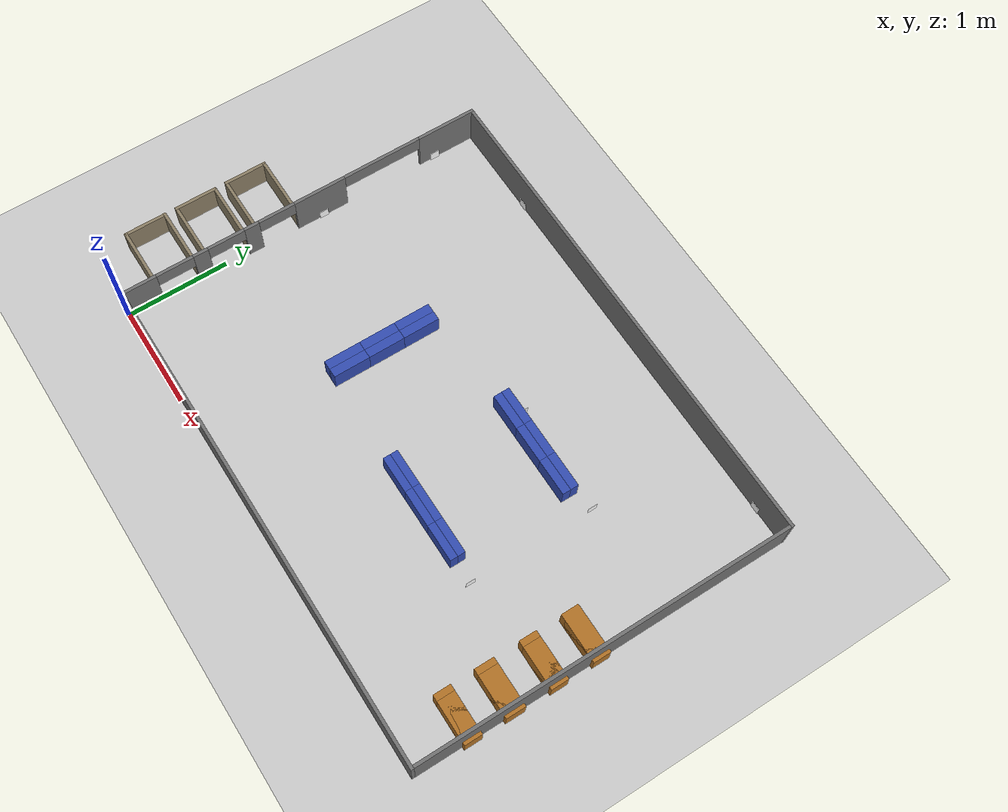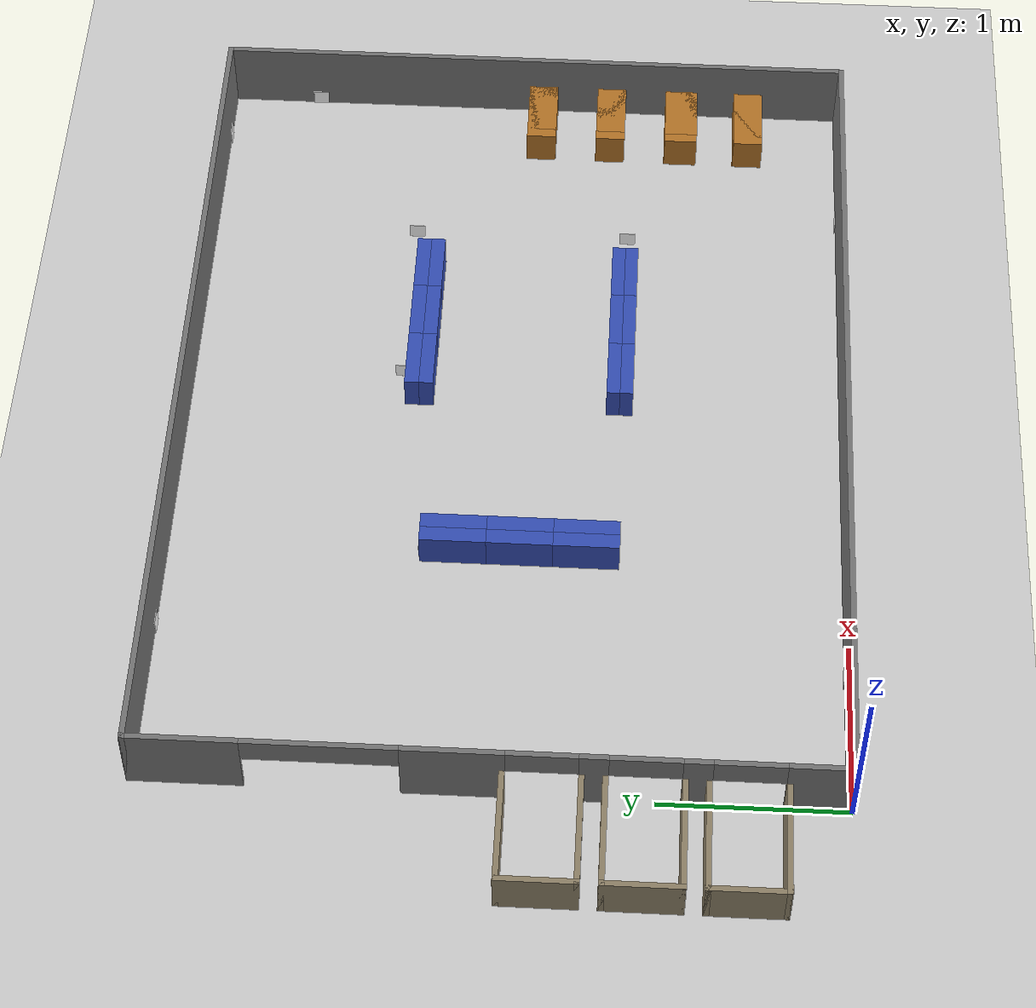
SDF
<?xml version="1.0" ?>
<sdf version="1.6">
  <world name="almacen_racks">
    <plugin filename="ignition-gazebo-physics-system" name="ignition::gazebo::systems::Physics"/>
    <plugin filename="ignition-gazebo-user-commands-system" name="ignition::gazebo::systems::UserCommands"/>
    <plugin filename="ignition-gazebo-scene-broadcaster-system" name="ignition::gazebo::systems::SceneBroadcaster"/>
    <plugin filename="ignition-gazebo-sensors-system" name="ignition::gazebo::systems::Sensors">
      <render_engine>ogre2</render_engine>
    </plugin>
    <plugin filename="ignition-gazebo-imu-system" name="ignition::gazebo::systems::Imu"/>
    <light type="directional" name="sun">
      <cast_shadows>true</cast_shadows><pose>0 0 10 0 0 0</pose>
      <diffuse>0.8 0.8 0.8 1</diffuse><specular>0.2 0.2 0.2 1</specular>
      <attenuation><range>1000</range><constant>0.9</constant>
        <linear>0.01</linear><quadratic>0.001</quadratic></attenuation>
      <direction>-0.5 0.1 -0.9</direction></light>
    <model name="ground_plane"><static>true</static><link name="link">
      <collision name="col"><geometry><plane><normal>0 0 1</normal><size>100 100</size></plane></geometry></collision>
      <visual name="vis"><geometry><plane><normal>0 0 1</normal><size>100 100</size></plane></geometry>
        <material><ambient>0.8 0.8 0.8 1</ambient><diffuse>0.8 0.8 0.8 1</diffuse></material></visual>
    </link></model>
    <model name="pared_oeste"><static>true</static>
      <pose>2.4400 3.6750 0.2050 0 0 0</pose>
      <link name="link">
        <collision name="col"><geometry><box><size>4.8800 0.0300 0.4100</size></box></geometry></collision>
        <visual name="vis"><geometry><box><size>4.8800 0.0300 0.4100</size></box></geometry>
          <material><ambient>0.45 0.45 0.45 1</ambient><diffuse>0.45 0.45 0.45 1</diffuse></material></visual>
      </link></model>
    <model name="pared_este"><static>true</static>
      <pose>2.4400 0.0150 0.2050 0 0 0</pose>
      <link name="link">
        <collision name="col"><geometry><box><size>4.8800 0.0300 0.4100</size></box></geometry></collision>
        <visual name="vis"><geometry><box><size>4.8800 0.0300 0.4100</size></box></geometry>
          <material><ambient>0.45 0.45 0.45 1</ambient><diffuse>0.45 0.45 0.45 1</diffuse></material></visual>
      </link></model>
    <model name="pared_norte"><static>true</static>
      <pose>4.8650 1.8450 0.2050 0 0 0</pose>
      <link name="link">
        <collision name="col"><geometry><box><size>0.0300 3.6300 0.4100</size></box></geometry></collision>
        <visual name="vis"><geometry><box><size>0.0300 3.6300 0.4100</size></box></geometry>
          <material><ambient>0.45 0.45 0.45 1</ambient><diffuse>0.45 0.45 0.45 1</diffuse></material></visual>
      </link></model>
    <model name="pared_sur_a"><static>true</static>
      <pose>0.0150 0.1750 0.2050 0 0 0</pose>
      <link name="link">
        <collision name="col"><geometry><box><size>0.0300 0.3500 0.4100</size></box></geometry></collision>
        <visual name="vis"><geometry><box><size>0.0300 0.3500 0.4100</size></box></geometry>
          <material><ambient>0.45 0.45 0.45 1</ambient><diffuse>0.45 0.45 0.45 1</diffuse></material></visual>
      </link></model>
    <model name="dintel_1"><static>true</static>
      <pose>0.0150 0.5350 0.3350 0 0 0</pose>
      <link name="link">
        <collision name="col"><geometry><box><size>0.0300 0.3700 0.1500</size></box></geometry></collision>
        <visual name="vis"><geometry><box><size>0.0300 0.3700 0.1500</size></box></geometry>
          <material><ambient>0.45 0.45 0.45 1</ambient><diffuse>0.45 0.45 0.45 1</diffuse></material></visual>
      </link></model>
    <model name="dock_1_izq"><static>true</static>
      <pose>-0.3100 0.3350 0.1300 0 0 0</pose>
      <link name="link">
        <collision name="col"><geometry><box><size>0.6200 0.0300 0.2600</size></box></geometry></collision>
        <visual name="vis"><geometry><box><size>0.6200 0.0300 0.2600</size></box></geometry>
          <material><ambient>0.55 0.50 0.40 1</ambient><diffuse>0.55 0.50 0.40 1</diffuse></material></visual>
      </link></model>
    <model name="dock_1_der"><static>true</static>
      <pose>-0.3100 0.7350 0.1300 0 0 0</pose>
      <link name="link">
        <collision name="col"><geometry><box><size>0.6200 0.0300 0.2600</size></box></geometry></collision>
        <visual name="vis"><geometry><box><size>0.6200 0.0300 0.2600</size></box></geometry>
          <material><ambient>0.55 0.50 0.40 1</ambient><diffuse>0.55 0.50 0.40 1</diffuse></material></visual>
      </link></model>
    <model name="dock_1_frente"><static>true</static>
      <pose>-0.6050 0.5350 0.1300 0 0 0</pose>
      <link name="link">
        <collision name="col"><geometry><box><size>0.0300 0.4300 0.2600</size></box></geometry></collision>
        <visual name="vis"><geometry><box><size>0.0300 0.4300 0.2600</size></box></geometry>
          <material><ambient>0.55 0.50 0.40 1</ambient><diffuse>0.55 0.50 0.40 1</diffuse></material></visual>
      </link></model>
    <model name="pared_sur_b"><static>true</static>
      <pose>0.0150 0.7950 0.2050 0 0 0</pose>
      <link name="link">
        <collision name="col"><geometry><box><size>0.0300 0.1500 0.4100</size></box></geometry></collision>
        <visual name="vis"><geometry><box><size>0.0300 0.1500 0.4100</size></box></geometry>
          <material><ambient>0.45 0.45 0.45 1</ambient><diffuse>0.45 0.45 0.45 1</diffuse></material></visual>
      </link></model>
    <model name="dintel_2"><static>true</static>
      <pose>0.0150 1.0550 0.3350 0 0 0</pose>
      <link name="link">
        <collision name="col"><geometry><box><size>0.0300 0.3700 0.1500</size></box></geometry></collision>
        <visual name="vis"><geometry><box><size>0.0300 0.3700 0.1500</size></box></geometry>
          <material><ambient>0.45 0.45 0.45 1</ambient><diffuse>0.45 0.45 0.45 1</diffuse></material></visual>
      </link></model>
    <model name="dock_2_izq"><static>true</static>
      <pose>-0.3100 0.8550 0.1300 0 0 0</pose>
      <link name="link">
        <collision name="col"><geometry><box><size>0.6200 0.0300 0.2600</size></box></geometry></collision>
        <visual name="vis"><geometry><box><size>0.6200 0.0300 0.2600</size></box></geometry>
          <material><ambient>0.55 0.50 0.40 1</ambient><diffuse>0.55 0.50 0.40 1</diffuse></material></visual>
      </link></model>
    <model name="dock_2_der"><static>true</static>
      <pose>-0.3100 1.2550 0.1300 0 0 0</pose>
      <link name="link">
        <collision name="col"><geometry><box><size>0.6200 0.0300 0.2600</size></box></geometry></collision>
        <visual name="vis"><geometry><box><size>0.6200 0.0300 0.2600</size></box></geometry>
          <material><ambient>0.55 0.50 0.40 1</ambient><diffuse>0.55 0.50 0.40 1</diffuse></material></visual>
      </link></model>
    <model name="dock_2_frente"><static>true</static>
      <pose>-0.6050 1.0550 0.1300 0 0 0</pose>
      <link name="link">
        <collision name="col"><geometry><box><size>0.0300 0.4300 0.2600</size></box></geometry></collision>
        <visual name="vis"><geometry><box><size>0.0300 0.4300 0.2600</size></box></geometry>
          <material><ambient>0.55 0.50 0.40 1</ambient><diffuse>0.55 0.50 0.40 1</diffuse></material></visual>
      </link></model>
    <model name="pared_sur_c"><static>true</static>
      <pose>0.0150 1.3150 0.2050 0 0 0</pose>
      <link name="link">
        <collision name="col"><geometry><box><size>0.0300 0.1500 0.4100</size></box></geometry></collision>
        <visual name="vis"><geometry><box><size>0.0300 0.1500 0.4100</size></box></geometry>
          <material><ambient>0.45 0.45 0.45 1</ambient><diffuse>0.45 0.45 0.45 1</diffuse></material></visual>
      </link></model>
    <model name="dintel_3"><static>true</static>
      <pose>0.0150 1.5750 0.3350 0 0 0</pose>
      <link name="link">
        <collision name="col"><geometry><box><size>0.0300 0.3700 0.1500</size></box></geometry></collision>
        <visual name="vis"><geometry><box><size>0.0300 0.3700 0.1500</size></box></geometry>
          <material><ambient>0.45 0.45 0.45 1</ambient><diffuse>0.45 0.45 0.45 1</diffuse></material></visual>
      </link></model>
    <model name="dock_3_izq"><static>true</static>
      <pose>-0.3100 1.3750 0.1300 0 0 0</pose>
      <link name="link">
        <collision name="col"><geometry><box><size>0.6200 0.0300 0.2600</size></box></geometry></collision>
        <visual name="vis"><geometry><box><size>0.6200 0.0300 0.2600</size></box></geometry>
          <material><ambient>0.55 0.50 0.40 1</ambient><diffuse>0.55 0.50 0.40 1</diffuse></material></visual>
      </link></model>
    <model name="dock_3_der"><static>true</static>
      <pose>-0.3100 1.7750 0.1300 0 0 0</pose>
      <link name="link">
        <collision name="col"><geometry><box><size>0.6200 0.0300 0.2600</size></box></geometry></collision>
        <visual name="vis"><geometry><box><size>0.6200 0.0300 0.2600</size></box></geometry>
          <material><ambient>0.55 0.50 0.40 1</ambient><diffuse>0.55 0.50 0.40 1</diffuse></material></visual>
      </link></model>
    <model name="dock_3_frente"><static>true</static>
      <pose>-0.6050 1.5750 0.1300 0 0 0</pose>
      <link name="link">
        <collision name="col"><geometry><box><size>0.0300 0.4300 0.2600</size></box></geometry></collision>
        <visual name="vis"><geometry><box><size>0.0300 0.4300 0.2600</size></box></geometry>
          <material><ambient>0.55 0.50 0.40 1</ambient><diffuse>0.55 0.50 0.40 1</diffuse></material></visual>
      </link></model>
    <model name="pared_sur_d"><static>true</static>
      <pose>0.0150 2.0250 0.2050 0 0 0</pose>
      <link name="link">
        <collision name="col"><geometry><box><size>0.0300 0.5300 0.4100</size></box></geometry></collision>
        <visual name="vis"><geometry><box><size>0.0300 0.5300 0.4100</size></box></geometry>
          <material><ambient>0.45 0.45 0.45 1</ambient><diffuse>0.45 0.45 0.45 1</diffuse></material></visual>
      </link></model>
    <model name="dintel_4"><static>true</static>
      <pose>0.0150 2.6900 0.3350 0 0 0</pose>
      <link name="link">
        <collision name="col"><geometry><box><size>0.0300 0.8000 0.1500</size></box></geometry></collision>
        <visual name="vis"><geometry><box><size>0.0300 0.8000 0.1500</size></box></geometry>
          <material><ambient>0.45 0.45 0.45 1</ambient><diffuse>0.45 0.45 0.45 1</diffuse></material></visual>
      </link></model>
    <model name="pared_sur_e"><static>true</static>
      <pose>0.0150 3.3900 0.2050 0 0 0</pose>
      <link name="link">
        <collision name="col"><geometry><box><size>0.0300 0.6000 0.4100</size></box></geometry></collision>
        <visual name="vis"><geometry><box><size>0.0300 0.6000 0.4100</size></box></geometry>
          <material><ambient>0.45 0.45 0.45 1</ambient><diffuse>0.45 0.45 0.45 1</diffuse></material></visual>
      </link></model>
    <model name="aruco_5"><static>true</static>
      <pose>3.9800 0.0350 0.0450 3.14159 -1.57080 1.57080</pose>
      <link name="link">
        <visual name="vis">
          <geometry><box><size>0.09 0.09 0.003</size></box></geometry>
          <material><diffuse>1 1 1 1</diffuse>
            <pbr><metal><albedo_map>model://description/textures/arucos/5.jpg</albedo_map>
              <metalness>0.0</metalness><roughness>1.0</roughness></metal></pbr>
          </material>
        </visual>
        <collision name="col"><geometry><box><size>0.09 0.09 0.003</size></box></geometry></collision>
      </link></model>
    <model name="aruco_21"><static>true</static>
      <pose>0.7900 0.0350 0.0450 3.14159 -1.57080 1.57080</pose>
      <link name="link">
        <visual name="vis">
          <geometry><box><size>0.09 0.09 0.003</size></box></geometry>
          <material><diffuse>1 1 1 1</diffuse>
            <pbr><metal><albedo_map>model://description/textures/arucos/21.jpg</albedo_map>
              <metalness>0.0</metalness><roughness>1.0</roughness></metal></pbr>
          </material>
        </visual>
        <collision name="col"><geometry><box><size>0.09 0.09 0.003</size></box></geometry></collision>
      </link></model>
    <model name="aruco_7"><static>true</static>
      <pose>4.5150 3.6550 0.0450 3.14159 -1.57080 -1.57080</pose>
      <link name="link">
        <visual name="vis">
          <geometry><box><size>0.09 0.09 0.003</size></box></geometry>
          <material><diffuse>1 1 1 1</diffuse>
            <pbr><metal><albedo_map>model://description/textures/arucos/7.jpg</albedo_map>
              <metalness>0.0</metalness><roughness>1.0</roughness></metal></pbr>
          </material>
        </visual>
        <collision name="col"><geometry><box><size>0.09 0.09 0.003</size></box></geometry></collision>
      </link></model>
    <model name="aruco_37"><static>true</static>
      <pose>0.9500 3.6550 0.0450 3.14159 -1.57080 -1.57080</pose>
      <link name="link">
        <visual name="vis">
          <geometry><box><size>0.09 0.09 0.003</size></box></geometry>
          <material><diffuse>1 1 1 1</diffuse>
            <pbr><metal><albedo_map>model://description/textures/arucos/37.jpg</albedo_map>
              <metalness>0.0</metalness><roughness>1.0</roughness></metal></pbr>
          </material>
        </visual>
        <collision name="col"><geometry><box><size>0.09 0.09 0.003</size></box></geometry></collision>
      </link></model>
    <model name="aruco_17"><static>true</static>
      <pose>4.8450 3.1450 0.0450 3.14159 -1.57080 3.14159</pose>
      <link name="link">
        <visual name="vis">
          <geometry><box><size>0.09 0.09 0.003</size></box></geometry>
          <material><diffuse>1 1 1 1</diffuse>
            <pbr><metal><albedo_map>model://description/textures/arucos/17.jpg</albedo_map>
              <metalness>0.0</metalness><roughness>1.0</roughness></metal></pbr>
          </material>
        </visual>
        <collision name="col"><geometry><box><size>0.09 0.09 0.003</size></box></geometry></collision>
      </link></model>
    <model name="aruco_30"><static>true</static>
      <pose>0.0400 2.0300 0.0450 3.14159 -1.57080 0.00000</pose>
      <link name="link">
        <visual name="vis">
          <geometry><box><size>0.09 0.09 0.003</size></box></geometry>
          <material><diffuse>1 1 1 1</diffuse>
            <pbr><metal><albedo_map>model://description/textures/arucos/30.jpg</albedo_map>
              <metalness>0.0</metalness><roughness>1.0</roughness></metal></pbr>
          </material>
        </visual>
        <collision name="col"><geometry><box><size>0.09 0.09 0.003</size></box></geometry></collision>
      </link></model>
    <model name="aruco_38"><static>true</static>
      <pose>0.0400 3.2500 0.0450 3.14159 -1.57080 0.00000</pose>
      <link name="link">
        <visual name="vis">
          <geometry><box><size>0.09 0.09 0.003</size></box></geometry>
          <material><diffuse>1 1 1 1</diffuse>
            <pbr><metal><albedo_map>model://description/textures/arucos/38.jpg</albedo_map>
              <metalness>0.0</metalness><roughness>1.0</roughness></metal></pbr>
          </material>
        </visual>
        <collision name="col"><geometry><box><size>0.09 0.09 0.003</size></box></geometry></collision>
      </link></model>
    <model name="aruco_19"><static>true</static>
      <pose>3.7850 2.4800 0.0450 3.14159 -1.57080 0.00000</pose>
      <link name="link">
        <visual name="vis">
          <geometry><box><size>0.09 0.09 0.003</size></box></geometry>
          <material><diffuse>1 1 1 1</diffuse>
            <pbr><metal><albedo_map>model://description/textures/arucos/19.jpg</albedo_map>
              <metalness>0.0</metalness><roughness>1.0</roughness></metal></pbr>
          </material>
        </visual>
        <collision name="col"><geometry><box><size>0.09 0.09 0.003</size></box></geometry></collision>
      </link></model>
    <model name="aruco_41"><static>true</static>
      <pose>2.7250 2.4800 0.0450 3.14159 -1.57080 3.14159</pose>
      <link name="link">
        <visual name="vis">
          <geometry><box><size>0.09 0.09 0.003</size></box></geometry>
          <material><diffuse>1 1 1 1</diffuse>
            <pbr><metal><albedo_map>model://description/textures/arucos/41.jpg</albedo_map>
              <metalness>0.0</metalness><roughness>1.0</roughness></metal></pbr>
          </material>
        </visual>
        <collision name="col"><geometry><box><size>0.09 0.09 0.003</size></box></geometry></collision>
      </link></model>
    <model name="aruco_20"><static>true</static>
      <pose>3.7850 1.2500 0.0450 3.14159 -1.57080 0.00000</pose>
      <link name="link">
        <visual name="vis">
          <geometry><box><size>0.09 0.09 0.003</size></box></geometry>
          <material><diffuse>1 1 1 1</diffuse>
            <pbr><metal><albedo_map>model://description/textures/arucos/20.jpg</albedo_map>
              <metalness>0.0</metalness><roughness>1.0</roughness></metal></pbr>
          </material>
        </visual>
        <collision name="col"><geometry><box><size>0.09 0.09 0.003</size></box></geometry></collision>
      </link></model>
    <model name="aruco_25"><static>true</static>
      <pose>2.7250 1.2500 0.0450 3.14159 -1.57080 3.14159</pose>
      <link name="link">
        <visual name="vis">
          <geometry><box><size>0.09 0.09 0.003</size></box></geometry>
          <material><diffuse>1 1 1 1</diffuse>
            <pbr><metal><albedo_map>model://description/textures/arucos/25.jpg</albedo_map>
              <metalness>0.0</metalness><roughness>1.0</roughness></metal></pbr>
          </material>
        </visual>
        <collision name="col"><geometry><box><size>0.09 0.09 0.003</size></box></geometry></collision>
      </link></model>
    <model name="aruco_31"><static>true</static>
      <pose>1.5200 2.3050 0.0450 3.14159 -1.57080 1.57080</pose>
      <link name="link">
        <visual name="vis">
          <geometry><box><size>0.09 0.09 0.003</size></box></geometry>
          <material><diffuse>1 1 1 1</diffuse>
            <pbr><metal><albedo_map>model://description/textures/arucos/31.jpg</albedo_map>
              <metalness>0.0</metalness><roughness>1.0</roughness></metal></pbr>
          </material>
        </visual>
        <collision name="col"><geometry><box><size>0.09 0.09 0.003</size></box></geometry></collision>
      </link></model>
    <model name="aruco_28"><static>true</static>
      <pose>1.5000 1.2450 0.0450 3.14159 -1.57080 -1.57080</pose>
      <link name="link">
        <visual name="vis">
          <geometry><box><size>0.09 0.09 0.003</size></box></geometry>
          <material><diffuse>1 1 1 1</diffuse>
            <pbr><metal><albedo_map>model://description/textures/arucos/28.jpg</albedo_map>
              <metalness>0.0</metalness><roughness>1.0</roughness></metal></pbr>
          </material>
        </visual>
        <collision name="col"><geometry><box><size>0.09 0.09 0.003</size></box></geometry></collision>
      </link></model>
    <model name="rack_C1_1"><static>true</static>
      <pose>2.6972 2.4183 0.1000 0 0 0</pose>
      <link name="link">
        <visual name="vis">
          <geometry><box><size>0.3563 0.0795 0.2000</size></box></geometry>
          <material><ambient>0.20 0.30 0.70 1</ambient><diffuse>0.20 0.30 0.70 1</diffuse></material>
        </visual>
        <collision name="col"><geometry><box><size>0.3563 0.0795 0.2000</size></box></geometry></collision>
      </link></model>
    <model name="rack_C1_2"><static>true</static>
      <pose>3.0535 2.4183 0.1000 0 0 0</pose>
      <link name="link">
        <visual name="vis">
          <geometry><box><size>0.3563 0.0795 0.2000</size></box></geometry>
          <material><ambient>0.20 0.30 0.70 1</ambient><diffuse>0.20 0.30 0.70 1</diffuse></material>
        </visual>
        <collision name="col"><geometry><box><size>0.3563 0.0795 0.2000</size></box></geometry></collision>
      </link></model>
    <model name="rack_C1_3"><static>true</static>
      <pose>3.4098 2.4183 0.1000 0 0 0</pose>
      <link name="link">
        <visual name="vis">
          <geometry><box><size>0.3563 0.0795 0.2000</size></box></geometry>
          <material><ambient>0.20 0.30 0.70 1</ambient><diffuse>0.20 0.30 0.70 1</diffuse></material>
        </visual>
        <collision name="col"><geometry><box><size>0.3563 0.0795 0.2000</size></box></geometry></collision>
      </link></model>
    <model name="rack_C1_4"><static>true</static>
      <pose>2.6972 2.3388 0.1000 0 0 0</pose>
      <link name="link">
        <visual name="vis">
          <geometry><box><size>0.3563 0.0795 0.2000</size></box></geometry>
          <material><ambient>0.20 0.30 0.70 1</ambient><diffuse>0.20 0.30 0.70 1</diffuse></material>
        </visual>
        <collision name="col"><geometry><box><size>0.3563 0.0795 0.2000</size></box></geometry></collision>
      </link></model>
    <model name="rack_C1_5"><static>true</static>
      <pose>3.0535 2.3388 0.1000 0 0 0</pose>
      <link name="link">
        <visual name="vis">
          <geometry><box><size>0.3563 0.0795 0.2000</size></box></geometry>
          <material><ambient>0.20 0.30 0.70 1</ambient><diffuse>0.20 0.30 0.70 1</diffuse></material>
        </visual>
        <collision name="col"><geometry><box><size>0.3563 0.0795 0.2000</size></box></geometry></collision>
      </link></model>
    <model name="rack_C1_6"><static>true</static>
      <pose>3.4098 2.3388 0.1000 0 0 0</pose>
      <link name="link">
        <visual name="vis">
          <geometry><box><size>0.3563 0.0795 0.2000</size></box></geometry>
          <material><ambient>0.20 0.30 0.70 1</ambient><diffuse>0.20 0.30 0.70 1</diffuse></material>
        </visual>
        <collision name="col"><geometry><box><size>0.3563 0.0795 0.2000</size></box></geometry></collision>
      </link></model>
    <model name="rack_C2_1"><static>true</static>
      <pose>2.6802 1.2942 0.1000 0 0 0</pose>
      <link name="link">
        <visual name="vis">
          <geometry><box><size>0.3583 0.0735 0.2000</size></box></geometry>
          <material><ambient>0.20 0.30 0.70 1</ambient><diffuse>0.20 0.30 0.70 1</diffuse></material>
        </visual>
        <collision name="col"><geometry><box><size>0.3583 0.0735 0.2000</size></box></geometry></collision>
      </link></model>
    <model name="rack_C2_2"><static>true</static>
      <pose>3.0385 1.2942 0.1000 0 0 0</pose>
      <link name="link">
        <visual name="vis">
          <geometry><box><size>0.3583 0.0735 0.2000</size></box></geometry>
          <material><ambient>0.20 0.30 0.70 1</ambient><diffuse>0.20 0.30 0.70 1</diffuse></material>
        </visual>
        <collision name="col"><geometry><box><size>0.3583 0.0735 0.2000</size></box></geometry></collision>
      </link></model>
    <model name="rack_C2_3"><static>true</static>
      <pose>3.3968 1.2942 0.1000 0 0 0</pose>
      <link name="link">
        <visual name="vis">
          <geometry><box><size>0.3583 0.0735 0.2000</size></box></geometry>
          <material><ambient>0.20 0.30 0.70 1</ambient><diffuse>0.20 0.30 0.70 1</diffuse></material>
        </visual>
        <collision name="col"><geometry><box><size>0.3583 0.0735 0.2000</size></box></geometry></collision>
      </link></model>
    <model name="rack_C2_4"><static>true</static>
      <pose>2.6802 1.2207 0.1000 0 0 0</pose>
      <link name="link">
        <visual name="vis">
          <geometry><box><size>0.3583 0.0735 0.2000</size></box></geometry>
          <material><ambient>0.20 0.30 0.70 1</ambient><diffuse>0.20 0.30 0.70 1</diffuse></material>
        </visual>
        <collision name="col"><geometry><box><size>0.3583 0.0735 0.2000</size></box></geometry></collision>
      </link></model>
    <model name="rack_C2_5"><static>true</static>
      <pose>3.0385 1.2207 0.1000 0 0 0</pose>
      <link name="link">
        <visual name="vis">
          <geometry><box><size>0.3583 0.0735 0.2000</size></box></geometry>
          <material><ambient>0.20 0.30 0.70 1</ambient><diffuse>0.20 0.30 0.70 1</diffuse></material>
        </visual>
        <collision name="col"><geometry><box><size>0.3583 0.0735 0.2000</size></box></geometry></collision>
      </link></model>
    <model name="rack_C2_6"><static>true</static>
      <pose>3.3968 1.2207 0.1000 0 0 0</pose>
      <link name="link">
        <visual name="vis">
          <geometry><box><size>0.3583 0.0735 0.2000</size></box></geometry>
          <material><ambient>0.20 0.30 0.70 1</ambient><diffuse>0.20 0.30 0.70 1</diffuse></material>
        </visual>
        <collision name="col"><geometry><box><size>0.3583 0.0735 0.2000</size></box></geometry></collision>
      </link></model>
    <model name="rack_B_1"><static>true</static>
      <pose>1.4880 2.1208 0.1000 0 0 0</pose>
      <link name="link">
        <visual name="vis">
          <geometry><box><size>0.0880 0.3583 0.2000</size></box></geometry>
          <material><ambient>0.20 0.30 0.70 1</ambient><diffuse>0.20 0.30 0.70 1</diffuse></material>
        </visual>
        <collision name="col"><geometry><box><size>0.0880 0.3583 0.2000</size></box></geometry></collision>
      </link></model>
    <model name="rack_B_2"><static>true</static>
      <pose>1.5760 2.1208 0.1000 0 0 0</pose>
      <link name="link">
        <visual name="vis">
          <geometry><box><size>0.0880 0.3583 0.2000</size></box></geometry>
          <material><ambient>0.20 0.30 0.70 1</ambient><diffuse>0.20 0.30 0.70 1</diffuse></material>
        </visual>
        <collision name="col"><geometry><box><size>0.0880 0.3583 0.2000</size></box></geometry></collision>
      </link></model>
    <model name="rack_B_3"><static>true</static>
      <pose>1.4880 1.7625 0.1000 0 0 0</pose>
      <link name="link">
        <visual name="vis">
          <geometry><box><size>0.0880 0.3583 0.2000</size></box></geometry>
          <material><ambient>0.20 0.30 0.70 1</ambient><diffuse>0.20 0.30 0.70 1</diffuse></material>
        </visual>
        <collision name="col"><geometry><box><size>0.0880 0.3583 0.2000</size></box></geometry></collision>
      </link></model>
    <model name="rack_B_4"><static>true</static>
      <pose>1.5760 1.7625 0.1000 0 0 0</pose>
      <link name="link">
        <visual name="vis">
          <geometry><box><size>0.0880 0.3583 0.2000</size></box></geometry>
          <material><ambient>0.20 0.30 0.70 1</ambient><diffuse>0.20 0.30 0.70 1</diffuse></material>
        </visual>
        <collision name="col"><geometry><box><size>0.0880 0.3583 0.2000</size></box></geometry></collision>
      </link></model>
    <model name="rack_B_5"><static>true</static>
      <pose>1.4880 1.4042 0.1000 0 0 0</pose>
      <link name="link">
        <visual name="vis">
          <geometry><box><size>0.0880 0.3583 0.2000</size></box></geometry>
          <material><ambient>0.20 0.30 0.70 1</ambient><diffuse>0.20 0.30 0.70 1</diffuse></material>
        </visual>
        <collision name="col"><geometry><box><size>0.0880 0.3583 0.2000</size></box></geometry></collision>
      </link></model>
    <model name="rack_B_6"><static>true</static>
      <pose>1.5760 1.4042 0.1000 0 0 0</pose>
      <link name="link">
        <visual name="vis">
          <geometry><box><size>0.0880 0.3583 0.2000</size></box></geometry>
          <material><ambient>0.20 0.30 0.70 1</ambient><diffuse>0.20 0.30 0.70 1</diffuse></material>
        </visual>
        <collision name="col"><geometry><box><size>0.0880 0.3583 0.2000</size></box></geometry></collision>
      </link></model>
    <model name="roller_R1"><static>true</static>
      <pose>4.6750 1.7850 0.1000 0 0 0</pose>
      <link name="link">
        <visual name="vis">
          <geometry><box><size>0.4700 0.1700 0.2000</size></box></geometry>
          <material><ambient>0.70 0.45 0.15 1</ambient><diffuse>0.70 0.45 0.15 1</diffuse></material>
        </visual>
        <collision name="col"><geometry><box><size>0.4700 0.1700 0.2000</size></box></geometry></collision>
      </link></model>
    <model name="roller_R2"><static>true</static>
      <pose>4.6750 1.3750 0.1000 0 0 0</pose>
      <link name="link">
        <visual name="vis">
          <geometry><box><size>0.4700 0.1700 0.2000</size></box></geometry>
          <material><ambient>0.70 0.45 0.15 1</ambient><diffuse>0.70 0.45 0.15 1</diffuse></material>
        </visual>
        <collision name="col"><geometry><box><size>0.4700 0.1700 0.2000</size></box></geometry></collision>
      </link></model>
    <model name="roller_R3"><static>true</static>
      <pose>4.6750 0.9550 0.1000 0 0 0</pose>
      <link name="link">
        <visual name="vis">
          <geometry><box><size>0.4700 0.1900 0.2000</size></box></geometry>
          <material><ambient>0.70 0.45 0.15 1</ambient><diffuse>0.70 0.45 0.15 1</diffuse></material>
        </visual>
        <collision name="col"><geometry><box><size>0.4700 0.1900 0.2000</size></box></geometry></collision>
      </link></model>
    <model name="roller_R4"><static>true</static>
      <pose>4.6750 0.5550 0.1000 0 0 0</pose>
      <link name="link">
        <visual name="vis">
          <geometry><box><size>0.4700 0.1700 0.2000</size></box></geometry>
          <material><ambient>0.70 0.45 0.15 1</ambient><diffuse>0.70 0.45 0.15 1</diffuse></material>
        </visual>
        <collision name="col"><geometry><box><size>0.4700 0.1700 0.2000</size></box></geometry></collision>
      </link></model>
    <model name="rack_C1_1"><static>true</static>
      <pose>2.6972 2.4183 0.1000 0 0 0</pose>
      <link name="link">
        <visual name="vis">
          <geometry><box><size>0.3563 0.0795 0.2000</size></box></geometry>
          <material><ambient>0.20 0.30 0.70 1</ambient><diffuse>0.20 0.30 0.70 1</diffuse></material>
        </visual>
        <collision name="col">
          <geometry><box><size>0.3563 0.0795 0.2000</size></box></geometry>
        </collision>
      </link></model>
    <model name="rack_C1_2"><static>true</static>
      <pose>3.0535 2.4183 0.1000 0 0 0</pose>
      <link name="link">
        <visual name="vis">
          <geometry><box><size>0.3563 0.0795 0.2000</size></box></geometry>
          <material><ambient>0.20 0.30 0.70 1</ambient><diffuse>0.20 0.30 0.70 1</diffuse></material>
        </visual>
        <collision name="col">
          <geometry><box><size>0.3563 0.0795 0.2000</size></box></geometry>
        </collision>
      </link></model>
    <model name="rack_C1_3"><static>true</static>
      <pose>3.4098 2.4183 0.1000 0 0 0</pose>
      <link name="link">
        <visual name="vis">
          <geometry><box><size>0.3563 0.0795 0.2000</size></box></geometry>
          <material><ambient>0.20 0.30 0.70 1</ambient><diffuse>0.20 0.30 0.70 1</diffuse></material>
        </visual>
        <collision name="col">
          <geometry><box><size>0.3563 0.0795 0.2000</size></box></geometry>
        </collision>
      </link></model>
    <model name="rack_C1_4"><static>true</static>
      <pose>2.6972 2.3388 0.1000 0 0 0</pose>
      <link name="link">
        <visual name="vis">
          <geometry><box><size>0.3563 0.0795 0.2000</size></box></geometry>
          <material><ambient>0.20 0.30 0.70 1</ambient><diffuse>0.20 0.30 0.70 1</diffuse></material>
        </visual>
        <collision name="col">
          <geometry><box><size>0.3563 0.0795 0.2000</size></box></geometry>
        </collision>
      </link></model>
    <model name="rack_C1_5"><static>true</static>
      <pose>3.0535 2.3388 0.1000 0 0 0</pose>
      <link name="link">
        <visual name="vis">
          <geometry><box><size>0.3563 0.0795 0.2000</size></box></geometry>
          <material><ambient>0.20 0.30 0.70 1</ambient><diffuse>0.20 0.30 0.70 1</diffuse></material>
        </visual>
        <collision name="col">
          <geometry><box><size>0.3563 0.0795 0.2000</size></box></geometry>
        </collision>
      </link></model>
    <model name="rack_C1_6"><static>true</static>
      <pose>3.4098 2.3388 0.1000 0 0 0</pose>
      <link name="link">
        <visual name="vis">
          <geometry><box><size>0.3563 0.0795 0.2000</size></box></geometry>
          <material><ambient>0.20 0.30 0.70 1</ambient><diffuse>0.20 0.30 0.70 1</diffuse></material>
        </visual>
        <collision name="col">
          <geometry><box><size>0.3563 0.0795 0.2000</size></box></geometry>
        </collision>
      </link></model>
    <model name="rack_C2_1"><static>true</static>
      <pose>2.6802 1.2942 0.1000 0 0 0</pose>
      <link name="link">
        <visual name="vis">
          <geometry><box><size>0.3583 0.0735 0.2000</size></box></geometry>
          <material><ambient>0.20 0.30 0.70 1</ambient><diffuse>0.20 0.30 0.70 1</diffuse></material>
        </visual>
        <collision name="col">
          <geometry><box><size>0.3583 0.0735 0.2000</size></box></geometry>
        </collision>
      </link></model>
    <model name="rack_C2_2"><static>true</static>
      <pose>3.0385 1.2942 0.1000 0 0 0</pose>
      <link name="link">
        <visual name="vis">
          <geometry><box><size>0.3583 0.0735 0.2000</size></box></geometry>
          <material><ambient>0.20 0.30 0.70 1</ambient><diffuse>0.20 0.30 0.70 1</diffuse></material>
        </visual>
        <collision name="col">
          <geometry><box><size>0.3583 0.0735 0.2000</size></box></geometry>
        </collision>
      </link></model>
    <model name="rack_C2_3"><static>true</static>
      <pose>3.3968 1.2942 0.1000 0 0 0</pose>
      <link name="link">
        <visual name="vis">
          <geometry><box><size>0.3583 0.0735 0.2000</size></box></geometry>
          <material><ambient>0.20 0.30 0.70 1</ambient><diffuse>0.20 0.30 0.70 1</diffuse></material>
        </visual>
        <collision name="col">
          <geometry><box><size>0.3583 0.0735 0.2000</size></box></geometry>
        </collision>
      </link></model>
    <model name="rack_C2_4"><static>true</static>
      <pose>2.6802 1.2207 0.1000 0 0 0</pose>
      <link name="link">
        <visual name="vis">
          <geometry><box><size>0.3583 0.0735 0.2000</size></box></geometry>
          <material><ambient>0.20 0.30 0.70 1</ambient><diffuse>0.20 0.30 0.70 1</diffuse></material>
        </visual>
        <collision name="col">
          <geometry><box><size>0.3583 0.0735 0.2000</size></box></geometry>
        </collision>
      </link></model>
    <model name="rack_C2_5"><static>true</static>
      <pose>3.0385 1.2207 0.1000 0 0 0</pose>
      <link name="link">
        <visual name="vis">
          <geometry><box><size>0.3583 0.0735 0.2000</size></box></geometry>
          <material><ambient>0.20 0.30 0.70 1</ambient><diffuse>0.20 0.30 0.70 1</diffuse></material>
        </visual>
        <collision name="col">
          <geometry><box><size>0.3583 0.0735 0.2000</size></box></geometry>
        </collision>
      </link></model>
    <model name="rack_C2_6"><static>true</static>
      <pose>3.3968 1.2207 0.1000 0 0 0</pose>
      <link name="link">
        <visual name="vis">
          <geometry><box><size>0.3583 0.0735 0.2000</size></box></geometry>
          <material><ambient>0.20 0.30 0.70 1</ambient><diffuse>0.20 0.30 0.70 1</diffuse></material>
        </visual>
        <collision name="col">
          <geometry><box><size>0.3583 0.0735 0.2000</size></box></geometry>
        </collision>
      </link></model>
    <model name="rack_B_1"><static>true</static>
      <pose>1.4880 2.1208 0.1000 0 0 0</pose>
      <link name="link">
        <visual name="vis">
          <geometry><box><size>0.0880 0.3583 0.2000</size></box></geometry>
          <material><ambient>0.20 0.30 0.70 1</ambient><diffuse>0.20 0.30 0.70 1</diffuse></material>
        </visual>
        <collision name="col">
          <geometry><box><size>0.0880 0.3583 0.2000</size></box></geometry>
        </collision>
      </link></model>
    <model name="rack_B_2"><static>true</static>
      <pose>1.5760 2.1208 0.1000 0 0 0</pose>
      <link name="link">
        <visual name="vis">
          <geometry><box><size>0.0880 0.3583 0.2000</size></box></geometry>
          <material><ambient>0.20 0.30 0.70 1</ambient><diffuse>0.20 0.30 0.70 1</diffuse></material>
        </visual>
        <collision name="col">
          <geometry><box><size>0.0880 0.3583 0.2000</size></box></geometry>
        </collision>
      </link></model>
    <model name="rack_B_3"><static>true</static>
      <pose>1.4880 1.7625 0.1000 0 0 0</pose>
      <link name="link">
        <visual name="vis">
          <geometry><box><size>0.0880 0.3583 0.2000</size></box></geometry>
          <material><ambient>0.20 0.30 0.70 1</ambient><diffuse>0.20 0.30 0.70 1</diffuse></material>
        </visual>
        <collision name="col">
          <geometry><box><size>0.0880 0.3583 0.2000</size></box></geometry>
        </collision>
      </link></model>
    <model name="rack_B_4"><static>true</static>
      <pose>1.5760 1.7625 0.1000 0 0 0</pose>
      <link name="link">
        <visual name="vis">
          <geometry><box><size>0.0880 0.3583 0.2000</size></box></geometry>
          <material><ambient>0.20 0.30 0.70 1</ambient><diffuse>0.20 0.30 0.70 1</diffuse></material>
        </visual>
        <collision name="col">
          <geometry><box><size>0.0880 0.3583 0.2000</size></box></geometry>
        </collision>
      </link></model>
    <model name="rack_B_5"><static>true</static>
      <pose>1.4880 1.4042 0.1000 0 0 0</pose>
      <link name="link">
        <visual name="vis">
          <geometry><box><size>0.0880 0.3583 0.2000</size></box></geometry>
          <material><ambient>0.20 0.30 0.70 1</ambient><diffuse>0.20 0.30 0.70 1</diffuse></material>
        </visual>
        <collision name="col">
          <geometry><box><size>0.0880 0.3583 0.2000</size></box></geometry>
        </collision>
      </link></model>
    <model name="rack_B_6"><static>true</static>
      <pose>1.5760 1.4042 0.1000 0 0 0</pose>
      <link name="link">
        <visual name="vis">
          <geometry><box><size>0.0880 0.3583 0.2000</size></box></geometry>
          <material><ambient>0.20 0.30 0.70 1</ambient><diffuse>0.20 0.30 0.70 1</diffuse></material>
        </visual>
        <collision name="col">
          <geometry><box><size>0.0880 0.3583 0.2000</size></box></geometry>
        </collision>
      </link></model>
    <model name="roller_R1"><static>true</static>
      <pose>4.6750 1.7850 0.1000 0 0 0</pose>
      <link name="link">
        <visual name="vis">
          <geometry><box><size>0.3500 0.1700 0.2000</size></box></geometry>
          <material><ambient>0.70 0.45 0.15 1</ambient><diffuse>0.70 0.45 0.15 1</diffuse></material>
        </visual>
        <collision name="col">
          <geometry><box><size>0.3500 0.1700 0.2000</size></box></geometry>
        </collision>
      </link></model>
    <model name="roller_R2"><static>true</static>
      <pose>4.6750 1.3750 0.1000 0 0 0</pose>
      <link name="link">
        <visual name="vis">
          <geometry><box><size>0.3500 0.1700 0.2000</size></box></geometry>
          <material><ambient>0.70 0.45 0.15 1</ambient><diffuse>0.70 0.45 0.15 1</diffuse></material>
        </visual>
        <collision name="col">
          <geometry><box><size>0.3500 0.1700 0.2000</size></box></geometry>
        </collision>
      </link></model>
    <model name="roller_R3"><static>true</static>
      <pose>4.6750 0.9550 0.1000 0 0 0</pose>
      <link name="link">
        <visual name="vis">
          <geometry><box><size>0.3500 0.1900 0.2000</size></box></geometry>
          <material><ambient>0.70 0.45 0.15 1</ambient><diffuse>0.70 0.45 0.15 1</diffuse></material>
        </visual>
        <collision name="col">
          <geometry><box><size>0.3500 0.1900 0.2000</size></box></geometry>
        </collision>
      </link></model>
    <model name="roller_R4"><static>true</static>
      <pose>4.6750 0.5550 0.1000 0 0 0</pose>
      <link name="link">
        <visual name="vis">
          <geometry><box><size>0.3500 0.1700 0.2000</size></box></geometry>
          <material><ambient>0.70 0.45 0.15 1</ambient><diffuse>0.70 0.45 0.15 1</diffuse></material>
        </visual>
        <collision name="col">
          <geometry><box><size>0.3500 0.1700 0.2000</size></box></geometry>
        </collision>
      </link></model>
  </world>
</sdf>
